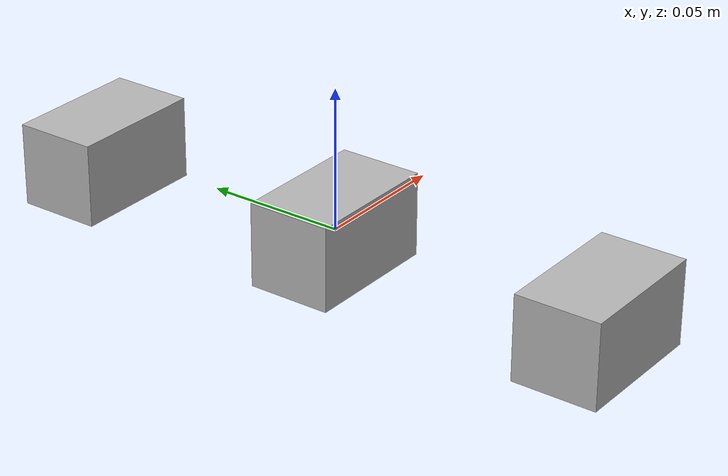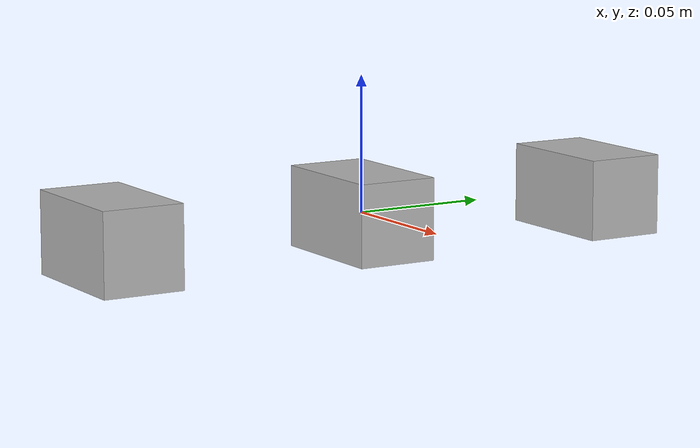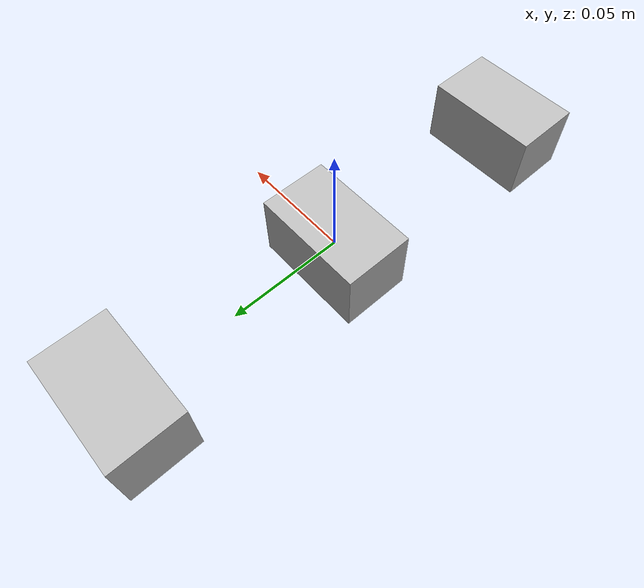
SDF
<?xml version="1.0"?>
<sdf version='1.6'>
  <model name="visensor">
    <!-- camera0 -->
    <link name="camera0">
      <gravity>0</gravity>
      <pose>0.0 0.1 0.0 0.0 0.0 0.0</pose>

      <kinematic>true</kinematic>

      <visual name="visual">
        <geometry>
          <box>
            <size>0.05 0.03 0.03</size>
          </box>
        </geometry>
      </visual>

      <sensor name="camera0" type="camera">
        <pose>0.025 0.0 0.0 0.0 0.0 0.0</pose>
        <camera>
          <horizontal_fov>1.047</horizontal_fov>
          <image>
            <width>640</width>
            <height>640</height>
          </image>
          <clip>
            <near>0.01</near>
            <far>200</far>
          </clip>
          <noise>
            <type>gaussian</type>
            <mean>0.0</mean>
            <stddev>0.0</stddev>
          </noise>
        </camera>

        <always_on>1</always_on>
        <update_rate>30</update_rate>
				<visualize>false</visualize>
        <plugin name="proto_camera_plugin" filename="libproto_camera_plugin.so">
          <topic_name>/visensor/camera0</topic_name>
        </plugin>
      </sensor>
    </link>

    <!-- camera1 -->
    <link name="camera1">
      <gravity>0</gravity>
      <pose>0.0 -0.1 0.0 0.0 0.0 0.0</pose>

      <kinematic>true</kinematic>

      <visual name="visual">
        <geometry>
          <box>
            <size>0.05 0.03 0.03</size>
          </box>
        </geometry>
      </visual>

      <sensor name="camera1" type="camera">
        <pose>0.025 0.0 0.0 0.0 0.0 0.0</pose>
        <camera>
          <horizontal_fov>1.047</horizontal_fov>
          <image>
            <width>640</width>
            <height>640</height>
          </image>
          <clip>
            <near>0.01</near>
            <far>200</far>
          </clip>
          <noise>
            <type>gaussian</type>
            <mean>0.0</mean>
            <stddev>0.0</stddev>
          </noise>
        </camera>

        <always_on>1</always_on>
        <update_rate>30</update_rate>
				<visualize>false</visualize>
        <plugin name="proto_camera_plugin" filename="libproto_camera_plugin.so">
          <topic_name>/visensor/camera1</topic_name>
        </plugin>
      </sensor>
    </link>

    <!-- imu0 -->
    <link name="imu0">
      <gravity>0</gravity>
      <pose>0.0 0.0 0.0 0.0 0.0 0.0</pose>

      <kinematic>true</kinematic>

      <visual name="visual">
        <geometry>
          <box>
            <size>0.05 0.03 0.03</size>
          </box>
        </geometry>
      </visual>

      <sensor name="imu_sensor" type="imu">
        <always_on>true</always_on>
        <update_rate>400</update_rate>
            <visualize>false</visualize>
        <topic>__default_topic__</topic>

        <plugin filename="libgazebo_ros_imu_sensor.so" name="imu_plugin">
          <topicName>imu</topicName>
          <bodyName>imu_link</bodyName>
          <updateRateHZ>200.0</updateRateHZ>
          <gaussianNoise>0.0</gaussianNoise>
          <xyzOffset>0 0 0</xyzOffset>
          <rpyOffset>0 0 0</rpyOffset>
          <frameName>imu_link</frameName>
        </plugin>
        <pose>0 0 0 0 0 0</pose>
      </sensor>
    </link>

    <plugin name="proto_pose_plugin" filename="libproto_pose_plugin.so">
      <pose_topic>/visensor/pose</pose_topic>
      <pose_set_topic>/visensor/pose/set</pose_set_topic>
    </plugin>
  </model>
</sdf>
